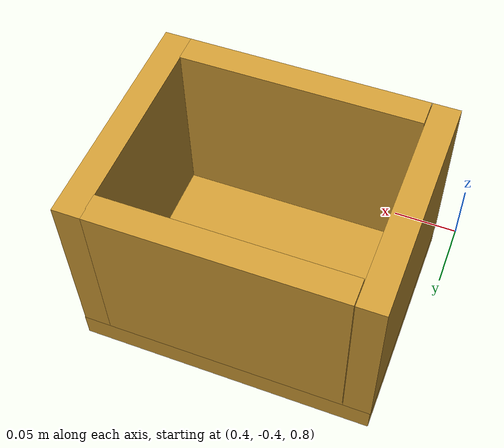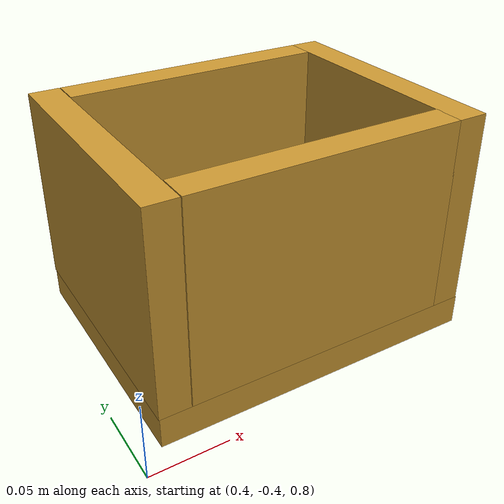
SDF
<sdf version="1.6">
 <world name="bunny_world">
  <physics name="1ms" type="ignored">
   <max_step_size>0.001</max_step_size>
   <real_time_factor>1.0</real_time_factor>
  </physics>
  <plugin filename="gz-sim-physics-system" name="gz::sim::systems::Physics"/>
  <plugin filename="gz-sim-user-commands-system" name="gz::sim::systems::UserCommands"/>
  <plugin filename="gz-sim-scene-broadcaster-system" name="gz::sim::systems::SceneBroadcaster"/>
  <plugin filename="gz-sim-contact-system" name="gz::sim::systems::Contact"/>
  <plugin filename="gz-sim-sensors-system" name="gz::sim::systems::Sensors">
   <render_engine>ogre2</render_engine>
  </plugin>
  <light type="directional" name="sun">
   <pose>0 0 10 0 0 0</pose>
   <diffuse>0.8 0.8 0.8 1</diffuse>
   <specular>0.2 0.2 0.2 1</specular>
   <attenuation>
    <range>1000</range>
    <constant>0.9</constant>
    <linear>0.01</linear>
    <quadratic>0.001</quadratic>
   </attenuation>
   <direction>-0.5 0.1 -0.9</direction>
  </light>
  <model name="ground_plane">
   <static>true</static>
   <link name="link">
    <collision name="collision">
     <geometry><plane><normal>0 0 1</normal><size>100 100</size></plane></geometry>
    </collision>
    <visual name="visual">
     <geometry><plane><normal>0 0 1</normal><size>100 100</size></plane></geometry>
     <material>
      <ambient>0.8 0.8 0.8 1</ambient>
      <diffuse>0.8 0.8 0.8 1</diffuse>
      <specular>0.8 0.8 0.8 1</specular>
     </material>
    </visual>
   </link>
  </model>
  <model name="panel_1">
   <static>true</static>
   <pose>0.622 -0.300 0.885 0 0 0.0000</pose>
   <link name="link">
    <collision name="collision"><geometry><box><size>0.020 0.170 0.130</size></box></geometry></collision>
    <visual name="visual">
     <geometry><box><size>0.020 0.170 0.130</size></box></geometry>
     <material>
      <ambient>0.8 0.6 0.2 1</ambient>
      <diffuse>0.8 0.6 0.2 1</diffuse>
      <specular>0.2 0.2 0.2 1</specular>
     </material>
    </visual>
   </link>
  </model>
  <model name="panel_2">
   <static>true</static>
   <pose>0.425 -0.300 0.885 0 0 0.0000</pose>
   <link name="link">
    <collision name="collision"><geometry><box><size>0.020 0.170 0.130</size></box></geometry></collision>
    <visual name="visual">
     <geometry><box><size>0.020 0.170 0.130</size></box></geometry>
     <material>
      <ambient>0.8 0.6 0.2 1</ambient>
      <diffuse>0.8 0.6 0.2 1</diffuse>
      <specular>0.2 0.2 0.2 1</specular>
     </material>
    </visual>
   </link>
  </model>
  <model name="panel_3">
   <static>true</static>
   <pose>0.524 -0.225 0.885 0 0 0.0000</pose>
   <link name="link">
    <collision name="collision"><geometry><box><size>0.177 0.020 0.130</size></box></geometry></collision>
    <visual name="visual">
     <geometry><box><size>0.177 0.020 0.130</size></box></geometry>
     <material>
      <ambient>0.8 0.6 0.2 1</ambient>
      <diffuse>0.8 0.6 0.2 1</diffuse>
      <specular>0.2 0.2 0.2 1</specular>
     </material>
    </visual>
   </link>
  </model>
  <model name="panel_4">
   <static>true</static>
   <pose>0.524 -0.375 0.885 0 0 0.0000</pose>
   <link name="link">
    <collision name="collision"><geometry><box><size>0.177 0.020 0.130</size></box></geometry></collision>
    <visual name="visual">
     <geometry><box><size>0.177 0.020 0.130</size></box></geometry>
     <material>
      <ambient>0.8 0.6 0.2 1</ambient>
      <diffuse>0.8 0.6 0.2 1</diffuse>
      <specular>0.2 0.2 0.2 1</specular>
     </material>
    </visual>
   </link>
  </model>
  <model name="panel_5">
   <static>true</static>
   <pose>0.524 -0.300 0.810 0 0 0.0000</pose>
   <link name="link">
    <collision name="collision"><geometry><box><size>0.217 0.170 0.020</size></box></geometry></collision>
    <visual name="visual">
     <geometry><box><size>0.217 0.170 0.020</size></box></geometry>
     <material>
      <ambient>0.8 0.6 0.2 1</ambient>
      <diffuse>0.8 0.6 0.2 1</diffuse>
      <specular>0.2 0.2 0.2 1</specular>
     </material>
    </visual>
   </link>
  </model>
 </world>
</sdf>
